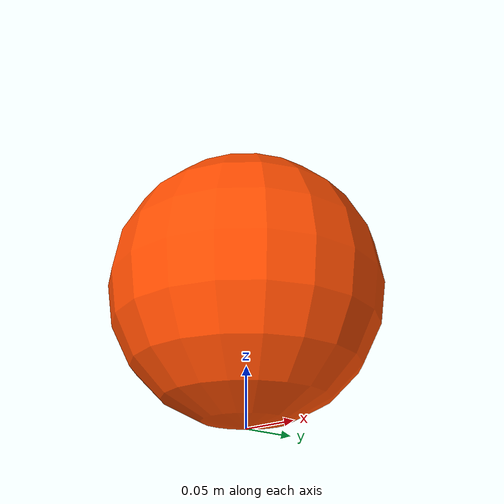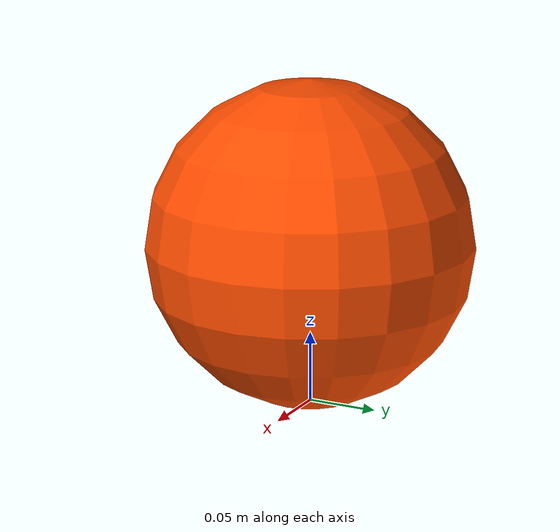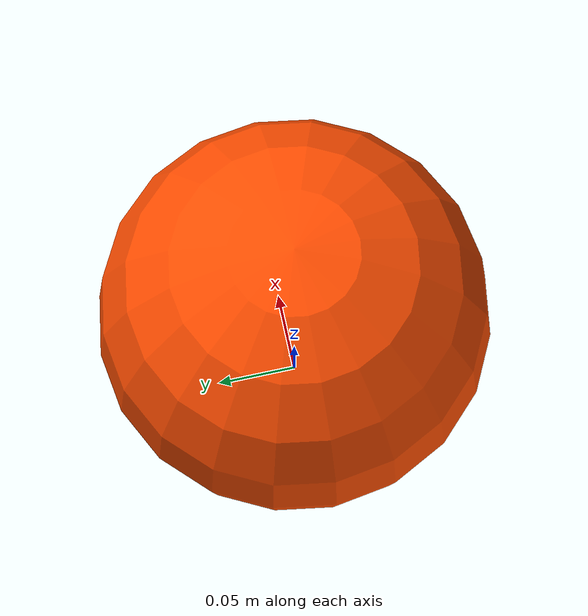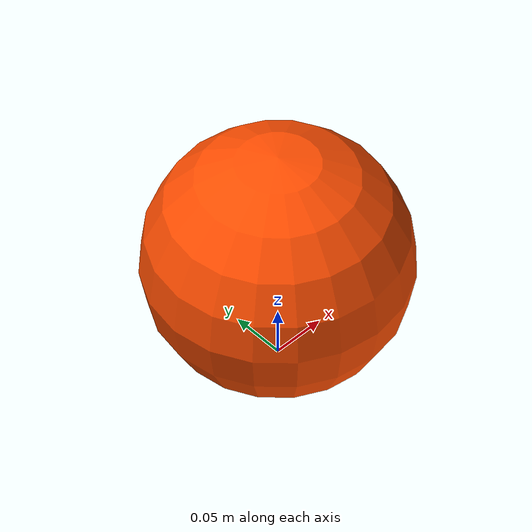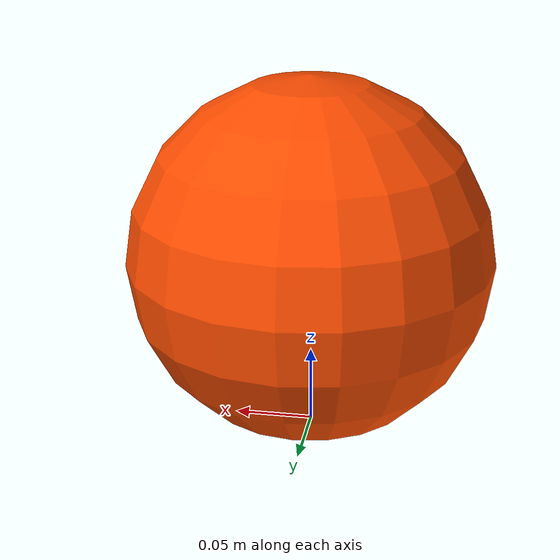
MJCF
<mujoco model="soccer_ball">
  <!-- FIFA regulation soccer ball: radius=0.115m, mass=0.43kg -->
  <worldbody>
    <body name="ball" pos="0 0 0.115">
      <joint name="ball_freejoint" type="free"/>
      <geom name="ball_geom"
            type="sphere"
            size="0.115"
            mass="0.43"
            rgba="1.0 0.3 0.0 1.0"
            friction="0.8 0.005 0.0001"
            condim="3"
            solref="0.02 1"
            solimp="0.9 0.95 0.001 0.5 2"
            priority="1"/>
      <site name="ball_center" pos="0 0 0" size="0.01"/>
    </body>
  </worldbody>
</mujoco>
